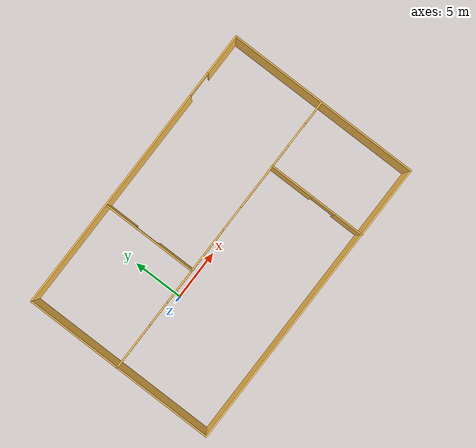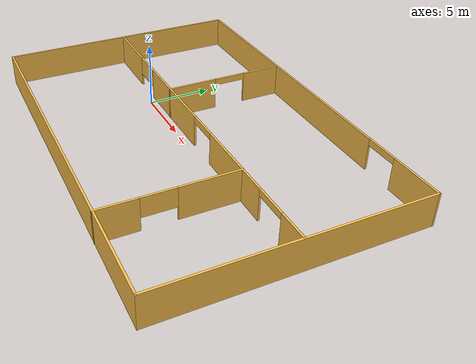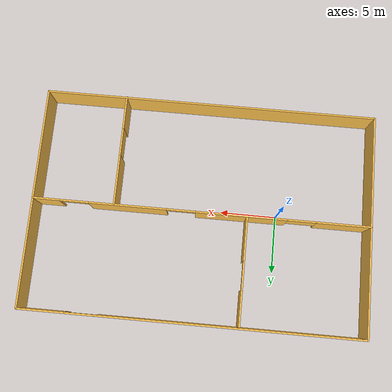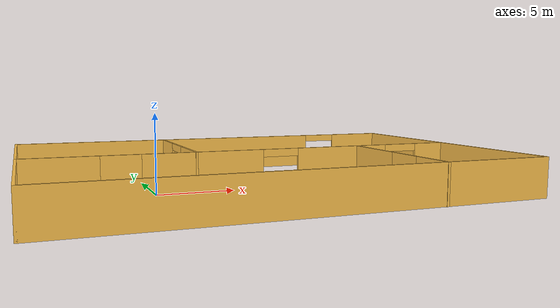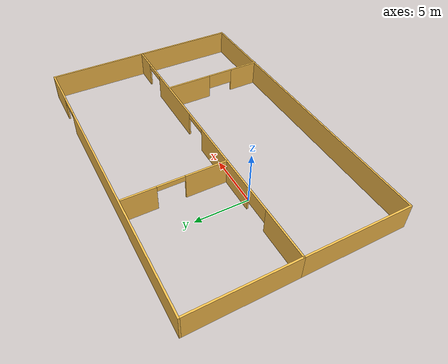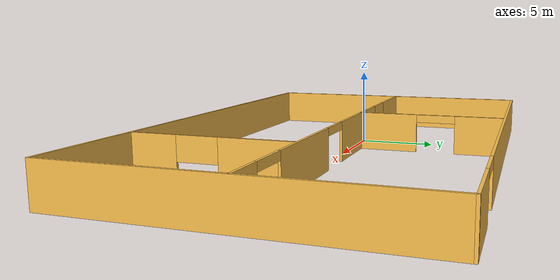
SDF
<?xml version='1.0'?>
<sdf version='1.6'>
  <model name='mybuild'>
    <pose frame=''>6.70595 0.371646 0 0 -0 0</pose>
    <link name='Wall_0'>
      <collision name='Wall_0_Collision'>
        <geometry>
          <box>
            <size>10 0.15 2.5</size>
          </box>
        </geometry>
        <pose frame=''>0 0 1.25 0 -0 0</pose>
      </collision>
      <visual name='Wall_0_Visual'>
        <pose frame=''>0 0 1.25 0 -0 0</pose>
        <geometry>
          <box>
            <size>10 0.15 2.5</size>
          </box>
        </geometry>
        <material>
          <script>
            <uri>file://media/materials/scripts/gazebo.material</uri>
            <name>Gazebo/Grey</name>
          </script>
          <ambient>1 0.764706 0.305882 1</ambient>
        </material>
        <meta>
          <layer>0</layer>
        </meta>
      </visual>
      <pose frame=''>-14.675 -4.73543 0 0 0 -1.5708</pose>
    </link>
    <link name='Wall_1'>
      <collision name='Wall_1_Collision'>
        <geometry>
          <box>
            <size>29.5 0.15 2.5</size>
          </box>
        </geometry>
        <pose frame=''>0 0 1.25 0 -0 0</pose>
      </collision>
      <visual name='Wall_1_Visual'>
        <pose frame=''>0 0 1.25 0 -0 0</pose>
        <geometry>
          <box>
            <size>29.5 0.15 2.5</size>
          </box>
        </geometry>
        <material>
          <script>
            <uri>file://media/materials/scripts/gazebo.material</uri>
            <name>Gazebo/Grey</name>
          </script>
          <ambient>1 0.764706 0.305882 1</ambient>
        </material>
        <meta>
          <layer>0</layer>
        </meta>
      </visual>
      <pose frame=''>0 -9.66043 0 0 -0 0</pose>
    </link>
    <link name='Wall_2'>
      <collision name='Wall_2_Collision'>
        <geometry>
          <box>
            <size>19.5 0.15 2.5</size>
          </box>
        </geometry>
        <pose frame=''>0 0 1.25 0 -0 0</pose>
      </collision>
      <visual name='Wall_2_Visual'>
        <pose frame=''>0 0 1.25 0 -0 0</pose>
        <geometry>
          <box>
            <size>19.5 0.15 2.5</size>
          </box>
        </geometry>
        <material>
          <script>
            <uri>file://media/materials/scripts/gazebo.material</uri>
            <name>Gazebo/Grey</name>
          </script>
          <ambient>1 0.764706 0.305882 1</ambient>
        </material>
        <meta>
          <layer>0</layer>
        </meta>
      </visual>
      <pose frame=''>14.675 0.014573 0 0 -0 1.5708</pose>
    </link>
    <link name='Wall_3'>
      <pose frame=''>0 9.68957 0 0 -0 3.14159</pose>
      <visual name='Wall_3_Visual_0'>
        <pose frame=''>-12.6853 0 1.25 0 -0 0</pose>
        <geometry>
          <box>
            <size>4.12944 0.15 2.5</size>
          </box>
        </geometry>
        <material>
          <script>
            <uri>file://media/materials/scripts/gazebo.material</uri>
            <name>Gazebo/Grey</name>
          </script>
          <ambient>1 0.764706 0.305882 1</ambient>
        </material>
        <meta>
          <layer>0</layer>
        </meta>
      </visual>
      <collision name='Wall_3_Collision_0'>
        <geometry>
          <box>
            <size>4.12944 0.15 2.5</size>
          </box>
        </geometry>
        <pose frame=''>-12.6853 0 1.25 0 -0 0</pose>
      </collision>
      <visual name='Wall_3_Visual_1'>
        <pose frame=''>3.31472 0 1.25 0 -0 0</pose>
        <geometry>
          <box>
            <size>22.8706 0.15 2.5</size>
          </box>
        </geometry>
        <material>
          <script>
            <uri>file://media/materials/scripts/gazebo.material</uri>
            <name>Gazebo/Grey</name>
          </script>
          <ambient>1 0.764706 0.305882 1</ambient>
        </material>
        <meta>
          <layer>0</layer>
        </meta>
      </visual>
      <collision name='Wall_3_Collision_1'>
        <geometry>
          <box>
            <size>22.8706 0.15 2.5</size>
          </box>
        </geometry>
        <pose frame=''>3.31472 0 1.25 0 -0 0</pose>
      </collision>
      <visual name='Wall_3_Visual_2'>
        <pose frame=''>-9.37056 0 2.25 0 -0 0</pose>
        <geometry>
          <box>
            <size>2.5 0.15 0.5</size>
          </box>
        </geometry>
        <material>
          <script>
            <uri>file://media/materials/scripts/gazebo.material</uri>
            <name>Gazebo/Grey</name>
          </script>
          <ambient>1 0.764706 0.305882 1</ambient>
        </material>
        <meta>
          <layer>0</layer>
        </meta>
      </visual>
      <collision name='Wall_3_Collision_2'>
        <geometry>
          <box>
            <size>2.5 0.15 0.5</size>
          </box>
        </geometry>
        <pose frame=''>-9.37056 0 2.25 0 -0 0</pose>
      </collision>
    </link>
    <link name='Wall_4'>
      <collision name='Wall_4_Collision'>
        <geometry>
          <box>
            <size>9.65 0.15 2.5</size>
          </box>
        </geometry>
        <pose frame=''>0 0 1.25 0 -0 0</pose>
      </collision>
      <visual name='Wall_4_Visual'>
        <pose frame=''>0 0 1.25 0 -0 0</pose>
        <geometry>
          <box>
            <size>9.65 0.15 2.5</size>
          </box>
        </geometry>
        <material>
          <script>
            <uri>file://media/materials/scripts/gazebo.material</uri>
            <name>Gazebo/Grey</name>
          </script>
          <ambient>1 0.764706 0.305882 1</ambient>
        </material>
        <meta>
          <layer>0</layer>
        </meta>
      </visual>
      <pose frame=''>-14.675 4.93957 0 0 0 -1.5708</pose>
    </link>
    <link name='Wall_5'>
      <pose frame=''>0 0.189573 0 0 -0 0</pose>
      <visual name='Wall_5_Visual_0'>
        <pose frame=''>-12.3566 0 1.25 0 -0 0</pose>
        <geometry>
          <box>
            <size>4.78671 0.15 2.5</size>
          </box>
        </geometry>
        <material>
          <script>
            <uri>file://media/materials/scripts/gazebo.material</uri>
            <name>Gazebo/Grey</name>
          </script>
          <ambient>1 0.764706 0.305882 1</ambient>
        </material>
        <meta>
          <layer>0</layer>
        </meta>
      </visual>
      <collision name='Wall_5_Collision_0'>
        <geometry>
          <box>
            <size>4.78671 0.15 2.5</size>
          </box>
        </geometry>
        <pose frame=''>-12.3566 0 1.25 0 -0 0</pose>
      </collision>
      <visual name='Wall_5_Visual_1'>
        <pose frame=''>-3.47004 0 1.25 0 -0 0</pose>
        <geometry>
          <box>
            <size>7.98649 0.15 2.5</size>
          </box>
        </geometry>
        <material>
          <script>
            <uri>file://media/materials/scripts/gazebo.material</uri>
            <name>Gazebo/Grey</name>
          </script>
          <ambient>1 0.764706 0.305882 1</ambient>
        </material>
        <meta>
          <layer>0</layer>
        </meta>
      </visual>
      <collision name='Wall_5_Collision_1'>
        <geometry>
          <box>
            <size>7.98649 0.15 2.5</size>
          </box>
        </geometry>
        <pose frame=''>-3.47004 0 1.25 0 -0 0</pose>
      </collision>
      <visual name='Wall_5_Visual_2'>
        <pose frame=''>6.42792 0 1.25 0 -0 0</pose>
        <geometry>
          <box>
            <size>6.80943 0.15 2.5</size>
          </box>
        </geometry>
        <material>
          <script>
            <uri>file://media/materials/scripts/gazebo.material</uri>
            <name>Gazebo/Grey</name>
          </script>
          <ambient>1 0.764706 0.305882 1</ambient>
        </material>
        <meta>
          <layer>0</layer>
        </meta>
      </visual>
      <collision name='Wall_5_Collision_2'>
        <geometry>
          <box>
            <size>6.80943 0.15 2.5</size>
          </box>
        </geometry>
        <pose frame=''>6.42792 0 1.25 0 -0 0</pose>
      </collision>
      <visual name='Wall_5_Visual_3'>
        <pose frame=''>13.5413 0 1.25 0 -0 0</pose>
        <geometry>
          <box>
            <size>2.41736 0.15 2.5</size>
          </box>
        </geometry>
        <material>
          <script>
            <uri>file://media/materials/scripts/gazebo.material</uri>
            <name>Gazebo/Grey</name>
          </script>
          <ambient>1 0.764706 0.305882 1</ambient>
        </material>
        <meta>
          <layer>0</layer>
        </meta>
      </visual>
      <collision name='Wall_5_Collision_3'>
        <geometry>
          <box>
            <size>2.41736 0.15 2.5</size>
          </box>
        </geometry>
        <pose frame=''>13.5413 0 1.25 0 -0 0</pose>
      </collision>
      <visual name='Wall_5_Visual_4'>
        <pose frame=''>-8.71329 0 1.75 0 -0 0</pose>
        <geometry>
          <box>
            <size>2.5 0.15 1.5</size>
          </box>
        </geometry>
        <material>
          <script>
            <uri>file://media/materials/scripts/gazebo.material</uri>
            <name>Gazebo/Grey</name>
          </script>
          <ambient>1 0.764706 0.305882 1</ambient>
        </material>
        <meta>
          <layer>0</layer>
        </meta>
      </visual>
      <collision name='Wall_5_Collision_4'>
        <geometry>
          <box>
            <size>2.5 0.15 1.5</size>
          </box>
        </geometry>
        <pose frame=''>-8.71329 0 1.75 0 -0 0</pose>
      </collision>
      <visual name='Wall_5_Visual_5'>
        <pose frame=''>1.7732 0 2.25 0 -0 0</pose>
        <geometry>
          <box>
            <size>2.5 0.15 0.5</size>
          </box>
        </geometry>
        <material>
          <script>
            <uri>file://media/materials/scripts/gazebo.material</uri>
            <name>Gazebo/Grey</name>
          </script>
          <ambient>1 0.764706 0.305882 1</ambient>
        </material>
        <meta>
          <layer>0</layer>
        </meta>
      </visual>
      <collision name='Wall_5_Collision_5'>
        <geometry>
          <box>
            <size>2.5 0.15 0.5</size>
          </box>
        </geometry>
        <pose frame=''>1.7732 0 2.25 0 -0 0</pose>
      </collision>
      <visual name='Wall_5_Visual_6'>
        <pose frame=''>11.0826 0 2.25 0 -0 0</pose>
        <geometry>
          <box>
            <size>2.5 0.15 0.5</size>
          </box>
        </geometry>
        <material>
          <script>
            <uri>file://media/materials/scripts/gazebo.material</uri>
            <name>Gazebo/Grey</name>
          </script>
          <ambient>1 0.764706 0.305882 1</ambient>
        </material>
        <meta>
          <layer>0</layer>
        </meta>
      </visual>
      <collision name='Wall_5_Collision_6'>
        <geometry>
          <box>
            <size>2.5 0.15 0.5</size>
          </box>
        </geometry>
        <pose frame=''>11.0826 0 2.25 0 -0 0</pose>
      </collision>
    </link>
    <link name='Wall_7'>
      <pose frame=''>-3.98494 4.8467 0 0 -0 1.5708</pose>
      <visual name='Wall_7_Visual_0'>
        <pose frame=''>-2.78299 0 1.25 0 -0 0</pose>
        <geometry>
          <box>
            <size>3.93402 0.15 2.5</size>
          </box>
        </geometry>
        <material>
          <script>
            <uri>file://media/materials/scripts/gazebo.material</uri>
            <name>Gazebo/Grey</name>
          </script>
          <ambient>1 0.764706 0.305882 1</ambient>
        </material>
        <meta>
          <layer>0</layer>
        </meta>
      </visual>
      <collision name='Wall_7_Collision_0'>
        <geometry>
          <box>
            <size>3.93402 0.15 2.5</size>
          </box>
        </geometry>
        <pose frame=''>-2.78299 0 1.25 0 -0 0</pose>
      </collision>
      <visual name='Wall_7_Visual_1'>
        <pose frame=''>3.21701 0 1.25 0 -0 0</pose>
        <geometry>
          <box>
            <size>3.06598 0.15 2.5</size>
          </box>
        </geometry>
        <material>
          <script>
            <uri>file://media/materials/scripts/gazebo.material</uri>
            <name>Gazebo/Grey</name>
          </script>
          <ambient>1 0.764706 0.305882 1</ambient>
        </material>
        <meta>
          <layer>0</layer>
        </meta>
      </visual>
      <collision name='Wall_7_Collision_1'>
        <geometry>
          <box>
            <size>3.06598 0.15 2.5</size>
          </box>
        </geometry>
        <pose frame=''>3.21701 0 1.25 0 -0 0</pose>
      </collision>
      <visual name='Wall_7_Visual_2'>
        <pose frame=''>0.434022 0 2.25 0 -0 0</pose>
        <geometry>
          <box>
            <size>2.5 0.15 0.5</size>
          </box>
        </geometry>
        <material>
          <script>
            <uri>file://media/materials/scripts/gazebo.material</uri>
            <name>Gazebo/Grey</name>
          </script>
          <ambient>1 0.764706 0.305882 1</ambient>
        </material>
        <meta>
          <layer>0</layer>
        </meta>
      </visual>
      <collision name='Wall_7_Collision_2'>
        <geometry>
          <box>
            <size>2.5 0.15 0.5</size>
          </box>
        </geometry>
        <pose frame=''>0.434022 0 2.25 0 -0 0</pose>
      </collision>
    </link>
    <link name='Wall_9'>
      <pose frame=''>7.60023 -4.76457 0 0 0 -1.5708</pose>
      <visual name='Wall_9_Visual_0'>
        <pose frame=''>-2.74389 0 1.25 0 -0 0</pose>
        <geometry>
          <box>
            <size>4.51221 0.15 2.5</size>
          </box>
        </geometry>
        <material>
          <script>
            <uri>file://media/materials/scripts/gazebo.material</uri>
            <name>Gazebo/Grey</name>
          </script>
          <ambient>1 0.764706 0.305882 1</ambient>
        </material>
        <meta>
          <layer>0</layer>
        </meta>
      </visual>
      <collision name='Wall_9_Collision_0'>
        <geometry>
          <box>
            <size>4.51221 0.15 2.5</size>
          </box>
        </geometry>
        <pose frame=''>-2.74389 0 1.25 0 -0 0</pose>
      </collision>
      <visual name='Wall_9_Visual_1'>
        <pose frame=''>3.50611 0 1.25 0 -0 0</pose>
        <geometry>
          <box>
            <size>2.98779 0.15 2.5</size>
          </box>
        </geometry>
        <material>
          <script>
            <uri>file://media/materials/scripts/gazebo.material</uri>
            <name>Gazebo/Grey</name>
          </script>
          <ambient>1 0.764706 0.305882 1</ambient>
        </material>
        <meta>
          <layer>0</layer>
        </meta>
      </visual>
      <collision name='Wall_9_Collision_1'>
        <geometry>
          <box>
            <size>2.98779 0.15 2.5</size>
          </box>
        </geometry>
        <pose frame=''>3.50611 0 1.25 0 -0 0</pose>
      </collision>
      <visual name='Wall_9_Visual_2'>
        <pose frame=''>0.762212 0 1.75 0 -0 0</pose>
        <geometry>
          <box>
            <size>2.5 0.15 1.5</size>
          </box>
        </geometry>
        <material>
          <script>
            <uri>file://media/materials/scripts/gazebo.material</uri>
            <name>Gazebo/Grey</name>
          </script>
          <ambient>1 0.764706 0.305882 1</ambient>
        </material>
        <meta>
          <layer>0</layer>
        </meta>
      </visual>
      <collision name='Wall_9_Collision_2'>
        <geometry>
          <box>
            <size>2.5 0.15 1.5</size>
          </box>
        </geometry>
        <pose frame=''>0.762212 0 1.75 0 -0 0</pose>
      </collision>
    </link>
    <static>1</static>
  </model>
</sdf>
